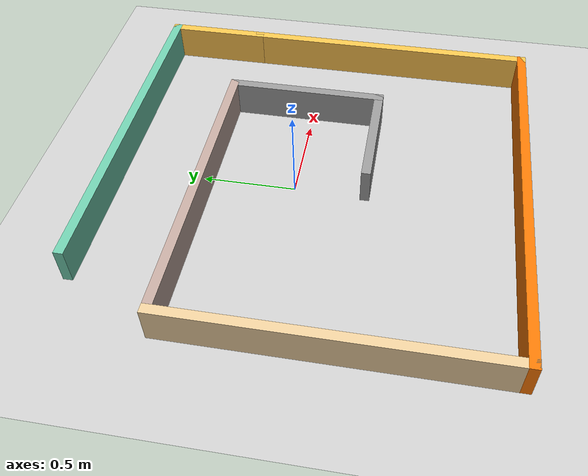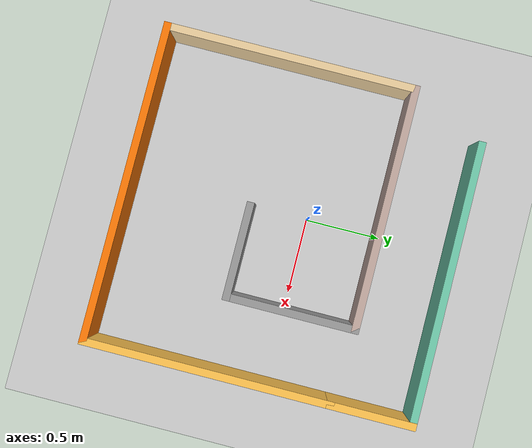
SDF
<sdf version="1.4">
  <world name="default">
    <!-- A global light source -->
    <include>
      <uri>model://sun</uri>
    </include>

    <!-- A ground plane -->
    <include>
      <uri>model://ground_plane</uri>
    </include>

    <physics type="ode">
      <real_time_update_rate>1000.0</real_time_update_rate>
      <max_step_size>0.001</max_step_size>
      <real_time_factor>1</real_time_factor>
      <ode>
        <solver>
          <type>quick</type>
          <iters>150</iters>
          <precon_iters>0</precon_iters>
          <sor>1.400000</sor>
          <use_dynamic_moi_rescaling>1</use_dynamic_moi_rescaling>
        </solver>
        <constraints>
          <cfm>0.00001</cfm>
          <erp>0.2</erp>
          <contact_max_correcting_vel>2000.000000</contact_max_correcting_vel>
          <contact_surface_layer>0.01000</contact_surface_layer>
        </constraints>
      </ode>
    </physics>

    <!-- Load world -->
    <include>
      <uri>model://wall</uri>
    </include>

  <scene>
    <ambient>0.4 0.4 0.4 1</ambient>
    <background>0.7 0.7 0.7 1</background>
    <shadows>true</shadows>
  </scene>
  </world>

</sdf>

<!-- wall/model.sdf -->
<sdf version='1.6'>
  <model name='wall'>
    <pose frame=''>0.06 -0.112565 -0.30 0 -0 0</pose>
    <link name='Wall_14'>
      <collision name='Wall_14_Collision'>
        <geometry>
          <box>
            <size>1.9 0.05 0.30</size>
          </box>
        </geometry>
        <pose frame=''>0 0 0.35 0 -0 0</pose>
      </collision>
      <visual name='Wall_14_Visual'>
        <pose frame=''>0 0 0.35 0 -0 0</pose>
        <geometry>
          <box>
            <size>1.9 0.05 0.30</size>
          </box>
        </geometry>
        <material>
          <script>
            <uri>file://media/materials/scripts/gazebo.material</uri>
            <name>Gazebo/Grey</name>
          </script>
          <ambient>0.435294 0.796078 0.67451 1</ambient>
        </material>
      </visual>
      <pose frame=''>0.125 1.08256 0 0 -0 0</pose>
    </link>
    <link name='Wall_15'>
      <collision name='Wall_15_Collision'>
        <geometry>
          <box>
            <size>0.589 0.05 0.30</size>
          </box>
        </geometry>
        <pose frame=''>0 0 0.35 0 -0 0</pose>
      </collision>
      <visual name='Wall_15_Visual'>
        <pose frame=''>0 0 0.35 0 -0 0</pose>
        <geometry>
          <box>
            <size>0.589 0.05 0.30</size>
          </box>
        </geometry>
        <material>
          <script>
            <uri>file://media/materials/scripts/gazebo.material</uri>
            <name>Gazebo/Grey</name>
          </script>
          <ambient>1 0.764706 0.305882 1</ambient>
        </material>
      </visual>
      <pose frame=''>1.05 0.813065 0 0 0 -1.5708</pose>
    </link>
    <link name='Wall_18'>
      <collision name='Wall_18_Collision'>
        <geometry>
          <box>
            <size>1.65 0.05 0.30</size>
          </box>
        </geometry>
        <pose frame=''>0 0 0.35 0 -0 0</pose>
      </collision>
      <visual name='Wall_18_Visual'>
        <pose frame=''>0 0 0.35 0 -0 0</pose>
        <geometry>
          <box>
            <size>1.65 0.05 0.30</size>
          </box>
        </geometry>
        <material>
          <script>
            <uri>file://media/materials/scripts/gazebo.material</uri>
            <name>Gazebo/Grey</name>
          </script>
          <ambient>0.760784 0.662745 0.627451 1</ambient>
        </material>
      </visual>
      <pose frame=''>-0.25 0.582565 0 0 -0 0</pose>
    </link>
    <link name='Wall_19'>
      <collision name='Wall_19_Collision'>
        <geometry>
          <box>
            <size>0.9 0.05 0.30</size>
          </box>
        </geometry>
        <pose frame=''>0 0 0.35 0 -0 0</pose>
      </collision>
      <visual name='Wall_19_Visual'>
        <pose frame=''>0 0 0.35 0 -0 0</pose>
        <geometry>
          <box>
            <size>0.9 0.05 0.30</size>
          </box>
        </geometry>
        <material>
          <script>
            <uri>file://media/materials/scripts/gazebo.material</uri>
            <name>Gazebo/Grey</name>
          </script>
          <ambient>1 1 1 1</ambient>
        </material>
      </visual>
      <pose frame=''>0.55 0.157565 0 0 0 -1.5708</pose>
    </link>
    <link name='Wall_20'>
      <collision name='Wall_20_Collision'>
        <geometry>
          <box>
            <size>0.65 0.05 0.30</size>
          </box>
        </geometry>
        <pose frame=''>0 0 0.35 0 -0 0</pose>
      </collision>
      <visual name='Wall_20_Visual'>
        <pose frame=''>0 0 0.35 0 -0 0</pose>
        <geometry>
          <box>
            <size>0.65 0.05 0.30</size>
          </box>
        </geometry>
        <material>
          <script>
            <uri>file://media/materials/scripts/gazebo.material</uri>
            <name>Gazebo/Grey</name>
          </script>
          <ambient>1 1 1 1</ambient>
        </material>
      </visual>
      <pose frame=''>0.25 -0.267435 0 0 -0 3.14159</pose>
    </link>
    <link name='Wall_22'>
      <collision name='Wall_22_Collision'>
        <geometry>
          <box>
            <size>1.676 0.05 0.30</size>
          </box>
        </geometry>
        <pose frame=''>0 0 0.35 0 -0 0</pose>
      </collision>
      <visual name='Wall_22_Visual'>
        <pose frame=''>0 0 0.35 0 -0 0</pose>
        <geometry>
          <box>
            <size>1.676 0.05 0.30</size>
          </box>
        </geometry>
        <material>
          <script>
            <uri>file://media/materials/scripts/gazebo.material</uri>
            <name>Gazebo/Grey</name>
          </script>
          <ambient>1 0.764706 0.305882 1</ambient>
        </material>
      </visual>
      <pose frame=''>1.05 -0.269435 0 0 0 -1.5708</pose>
    </link>
    <link name='Wall_23'>
      <collision name='Wall_23_Collision'>
        <geometry>
          <box>
            <size>2.15 0.05 0.30</size>
          </box>
        </geometry>
        <pose frame=''>0 0 0.35 0 -0 0</pose>
      </collision>
      <visual name='Wall_23_Visual'>
        <pose frame=''>0 0 0.35 0 -0 0</pose>
        <geometry>
          <box>
            <size>2.15 0.05 0.30</size>
          </box>
        </geometry>
        <material>
          <script>
            <uri>file://media/materials/scripts/gazebo.material</uri>
            <name>Gazebo/Grey</name>
          </script>
          <ambient>0.996078 0.47451 0.0196078 1</ambient>
        </material>
      </visual>
      <pose frame=''>0 -1.08244 0 0 -0 3.14159</pose>
    </link>
    <link name='Wall_24'>
      <collision name='Wall_24_Collision'>
        <geometry>
          <box>
            <size>1.71526 0.05 0.30</size>
          </box>
        </geometry>
        <pose frame=''>0 0 0.35 0 -0 0</pose>
      </collision>
      <visual name='Wall_24_Visual'>
        <pose frame=''>0 0 0.35 0 -0 0</pose>
        <geometry>
          <box>
            <size>1.71526 0.05 0.30</size>
          </box>
        </geometry>
        <material>
          <script>
            <uri>file://media/materials/scripts/gazebo.material</uri>
            <name>Gazebo/Grey</name>
          </script>
          <ambient>0.921569 0.807843 0.615686 1</ambient>
        </material>
      </visual>
      <pose frame=''>-1.05 -0.249935 0 0 -0 1.5708</pose>
    </link>
    <static>1</static>
  </model>
</sdf>
